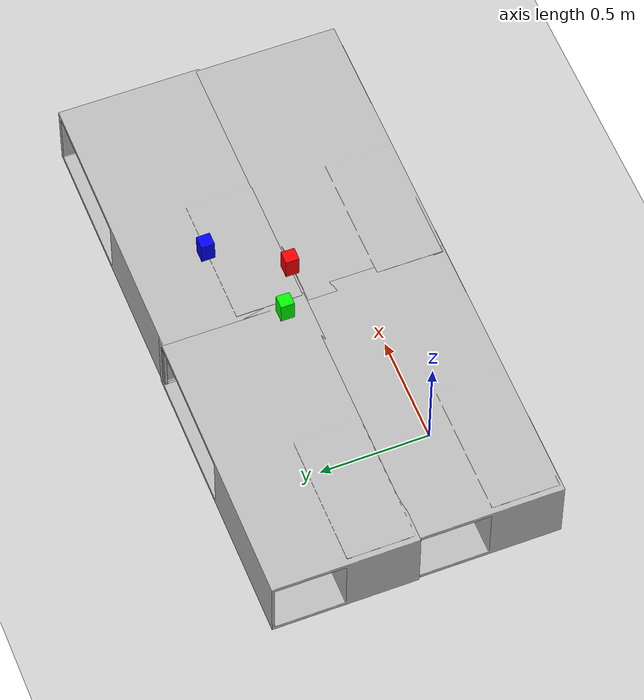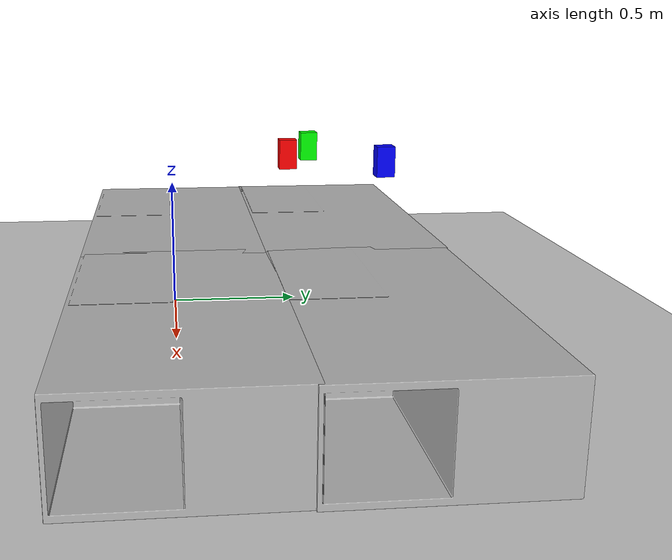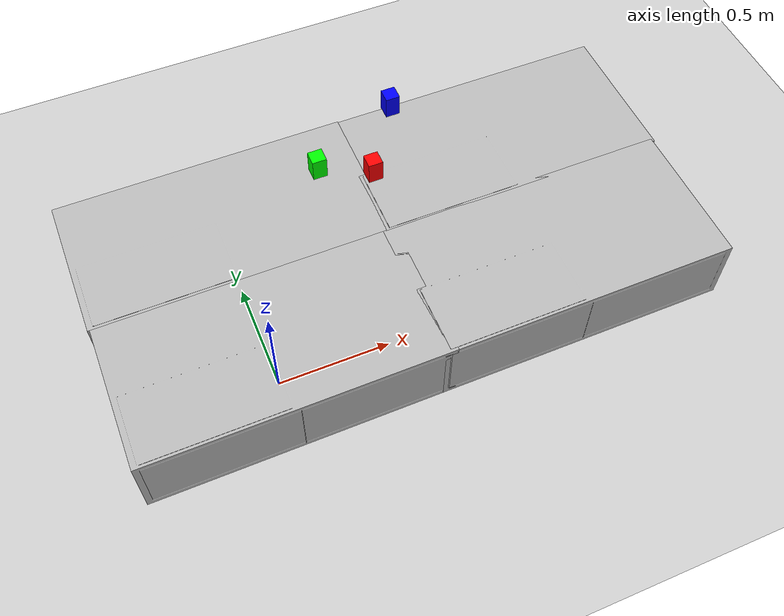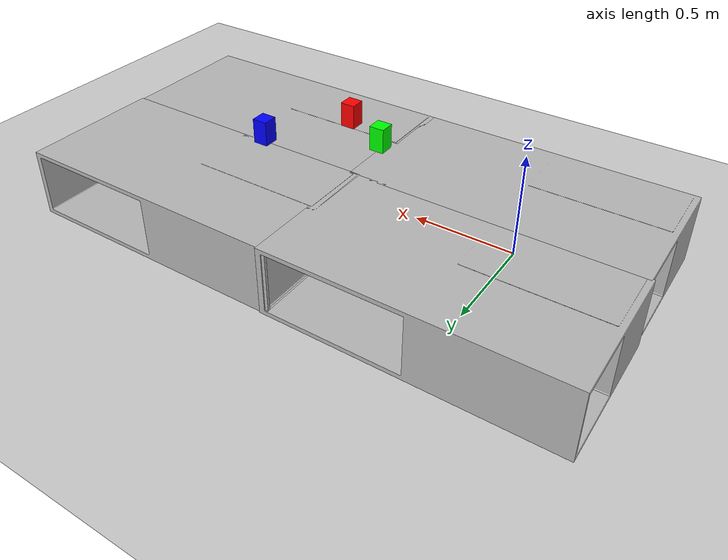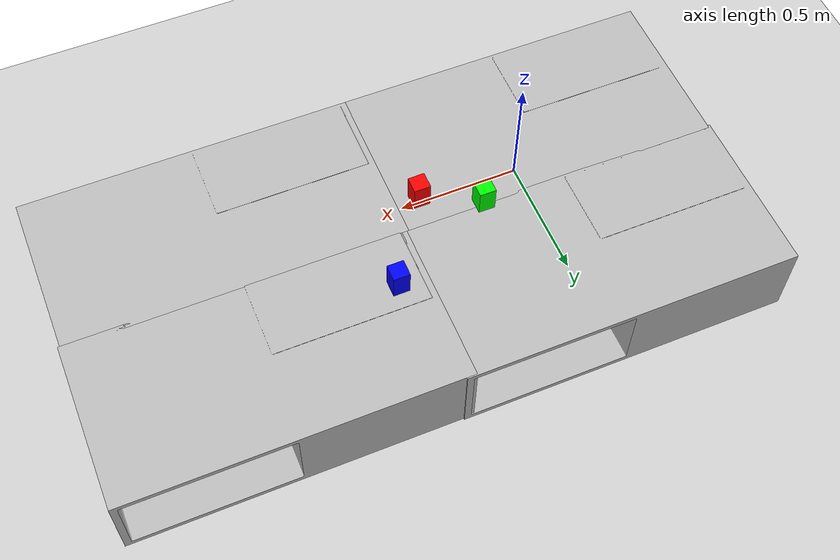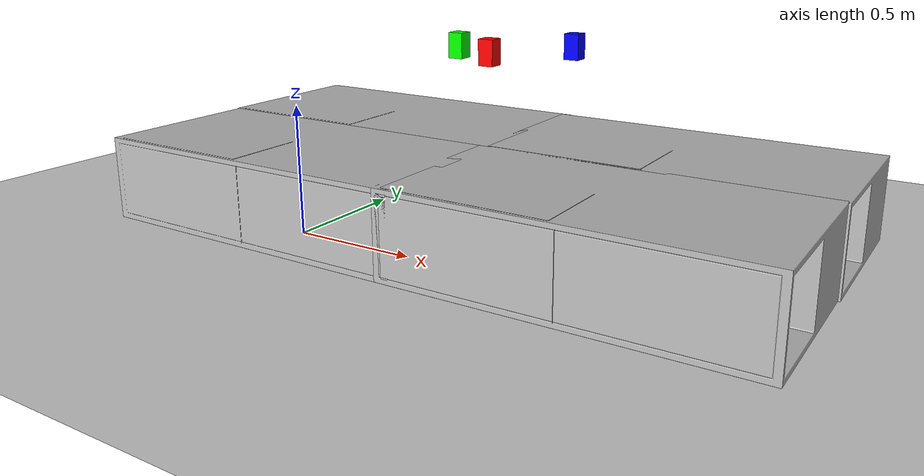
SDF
<sdf version="1.10">
 <world name="empty">
  <physics name="1ms" type="ignored">
   <max_step_size>0.001</max_step_size>
   <real_time_factor>1</real_time_factor>
   <real_time_update_rate>1000</real_time_update_rate>
  </physics>
  <plugin name="gz::sim::systems::Physics" filename="gz-sim-physics-system"/>
  <plugin name="gz::sim::systems::UserCommands" filename="gz-sim-user-commands-system"/>
  <plugin name="gz::sim::systems::SceneBroadcaster" filename="gz-sim-scene-broadcaster-system"/>
  <plugin name="gz::sim::systems::Contact" filename="gz-sim-contact-system"/>
  <plugin name="gz::sim::systems::Sensors" filename="gz-sim-sensors-system">
   <render_engine>ogre2</render_engine>
  </plugin>
  <gravity>0 0 -9.8000000000000007</gravity>
  <magnetic_field>5.5644999999999998e-06 2.2875799999999999e-05 -4.2388400000000002e-05</magnetic_field>
  <atmosphere type="adiabatic"/>
  <scene>
   <ambient>0.400000006 0.400000006 0.400000006 1</ambient>
   <background>0.699999988 0.699999988 0.699999988 1</background>
   <shadows>true</shadows>
  </scene>
  <model name="red_box">
   <static>false</static>
   <link name="red_link">
    <pose>0.6 0.4 0.70 0 0 0</pose>
    <collision name="red_collision"><geometry><box><size>0.06 0.06 0.1</size></box></geometry></collision>
    <visual name="red_visual">
     <geometry><box><size>0.06 0.06 0.1</size></box></geometry>
     <material><ambient>1 0 0 1</ambient><diffuse>1 0 0 1</diffuse></material>
    </visual>
   </link>
  </model>
  <model name="green_box">
   <static>false</static>
   <link name="green_link">
    <pose>0.4 0.5 0.70 0 0 0</pose>
    <collision name="green_collision"><geometry><box><size>0.06 0.06 0.1</size></box></geometry></collision>
    <visual name="green_visual">
     <geometry><box><size>0.06 0.06 0.1</size></box></geometry>
     <material><ambient>0 1 0 1</ambient><diffuse>0 1 0 1</diffuse></material>
    </visual>
   </link>
  </model>
  <model name="blue_box">
   <static>false</static>
   <link name="blue_link">
    <pose>0.8 0.7 0.70 0 0 0</pose>
    <collision name="blue_collision"><geometry><box><size>0.06 0.06 0.1</size></box></geometry></collision>
    <visual name="blue_visual">
     <geometry><box><size>0.06 0.06 0.1</size></box></geometry>
     <material><ambient>0 0 1 1</ambient><diffuse>0 0 1 1</diffuse></material>
    </visual>
   </link>
  </model>
  <model name="CoffeeTable_1">
   <static>true</static>
   <model name="aws_robomaker_residential_CoffeeTable_01">
    <link name="link">
     <inertial>
      <mass>21.699999999999999</mass>
      <inertia>
       <ixx>0.81374999999999975</ixx>
       <ixy>0</ixy>
       <ixz>0</ixz>
       <iyy>2.76675</iyy>
       <iyz>0</iyz>
       <izz>3.254</izz>
      </inertia>
     </inertial>
     <collision name="collision">
      <geometry>
       <mesh>
        <uri>model://aws_robomaker_residential_CoffeeTable_01/meshes/aws_CoffeeTable_01_collision.DAE</uri>
        <scale>1 1 1</scale>
       </mesh>
      </geometry>
      <surface><contact><ode><max_vel>0.01</max_vel></ode></contact></surface>
     </collision>
     <visual name="visual">
      <geometry>
       <mesh><uri>model://aws_robomaker_residential_CoffeeTable_01/meshes/aws_CoffeeTable_01_visual.DAE</uri></mesh>
      </geometry>
      <meta><layer>1</layer></meta>
     </visual>
    </link>
    <static>true</static>
   </model>
   <pose>0 0 0.041983 0 -0 0</pose>
  </model>
  <model name="CoffeeTable_2">
   <static>true</static>
   <model name="aws_robomaker_residential_CoffeeTable_01">
    <link name="link">
     <inertial>
      <mass>21.699999999999999</mass>
      <inertia>
       <ixx>0.81374999999999975</ixx>
       <ixy>0</ixy>
       <ixz>0</ixz>
       <iyy>2.76675</iyy>
       <iyz>0</iyz>
       <izz>3.254</izz>
      </inertia>
     </inertial>
     <collision name="collision">
      <geometry>
       <mesh>
        <uri>model://aws_robomaker_residential_CoffeeTable_01/meshes/aws_CoffeeTable_01_collision.DAE</uri>
        <scale>1 1 1</scale>
       </mesh>
      </geometry>
      <surface><contact><ode><max_vel>0.01</max_vel></ode></contact></surface>
     </collision>
     <visual name="visual">
      <geometry>
       <mesh><uri>model://aws_robomaker_residential_CoffeeTable_01/meshes/aws_CoffeeTable_01_visual.DAE</uri></mesh>
      </geometry>
      <meta><layer>1</layer></meta>
     </visual>
    </link>
    <static>true</static>
   </model>
   <pose>1.2577 0 0.041983 0 -0 0</pose>
  </model>
  <model name="CoffeeTable_3">
   <static>true</static>
   <model name="aws_robomaker_residential_CoffeeTable_01">
    <link name="link">
     <inertial>
      <mass>21.699999999999999</mass>
      <inertia>
       <ixx>0.81374999999999975</ixx>
       <ixy>0</ixy>
       <ixz>0</ixz>
       <iyy>2.76675</iyy>
       <iyz>0</iyz>
       <izz>3.254</izz>
      </inertia>
     </inertial>
     <collision name="collision">
      <geometry>
       <mesh>
        <uri>model://aws_robomaker_residential_CoffeeTable_01/meshes/aws_CoffeeTable_01_collision.DAE</uri>
        <scale>1 1 1</scale>
       </mesh>
      </geometry>
      <surface><contact><ode><max_vel>0.01</max_vel></ode></contact></surface>
     </collision>
     <visual name="visual">
      <geometry>
       <mesh><uri>model://aws_robomaker_residential_CoffeeTable_01/meshes/aws_CoffeeTable_01_visual.DAE</uri></mesh>
      </geometry>
      <meta><layer>1</layer></meta>
     </visual>
    </link>
    <static>true</static>
   </model>
   <pose>1.26554 0.637963 0.041983 0 -0 0</pose>
  </model>
  <model name="CoffeeTable_4">
   <static>true</static>
   <model name="aws_robomaker_residential_CoffeeTable_01">
    <link name="link">
     <inertial>
      <mass>21.699999999999999</mass>
      <inertia>
       <ixx>0.81374999999999975</ixx>
       <ixy>0</ixy>
       <ixz>0</ixz>
       <iyy>2.76675</iyy>
       <iyz>0</iyz>
       <izz>3.254</izz>
      </inertia>
     </inertial>
     <collision name="collision">
      <geometry>
       <mesh>
        <uri>model://aws_robomaker_residential_CoffeeTable_01/meshes/aws_CoffeeTable_01_collision.DAE</uri>
        <scale>1 1 1</scale>
       </mesh>
      </geometry>
      <surface><contact><ode><max_vel>0.01</max_vel></ode></contact></surface>
     </collision>
     <visual name="visual">
      <geometry>
       <mesh><uri>model://aws_robomaker_residential_CoffeeTable_01/meshes/aws_CoffeeTable_01_visual.DAE</uri></mesh>
      </geometry>
      <meta><layer>1</layer></meta>
     </visual>
    </link>
    <static>true</static>
   </model>
   <pose>-0.008642 0.643146 0.041983 0 -0 0</pose>
  </model>
  <model name="ground_plane">
   <static>true</static>
   <link name="link">
    <collision name="collision">
     <geometry><plane><normal>0 0 1</normal><size>1 1</size></plane></geometry>
    </collision>
    <visual name="visual">
     <geometry><plane><normal>0 0 1</normal><size>100 100</size></plane></geometry>
     <material>
      <ambient>0.8 0.8 0.8 1</ambient>
      <diffuse>0.8 0.8 0.8 1</diffuse>
      <specular>0.8 0.8 0.8 1</specular>
     </material>
    </visual>
    <inertial>
     <mass>1</mass>
     <inertia><ixx>1</ixx><ixy>0</ixy><ixz>0</ixz><iyy>1</iyy><iyz>0</iyz><izz>1</izz></inertia>
    </inertial>
   </link>
  </model>
  <light name="sun" type="directional">
   <pose>0 0 10 0 -0 0</pose>
   <intensity>1</intensity>
   <direction>-0.5 0.1 -0.9</direction>
   <diffuse>0.8 0.8 0.8 1</diffuse>
   <specular>0.2 0.2 0.2 1</specular>
   <attenuation>
    <range>1000</range>
    <linear>0.01</linear>
    <constant>0.90000000000000002</constant>
    <quadratic>0.001</quadratic>
   </attenuation>
   <spot><inner_angle>0</inner_angle><outer_angle>0</outer_angle><falloff>0</falloff></spot>
  </light>
 </world>
</sdf>
